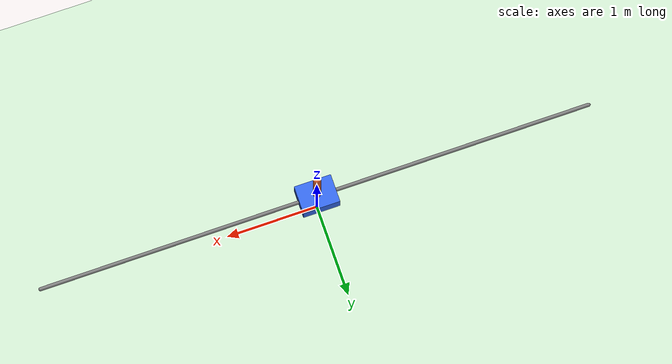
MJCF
<mujoco model="cartpole">
  <option gravity="0 0 -9.81" timestep="0.01"/>

  <worldbody>
    <light pos="0 0 3"/>
    <geom name="floor" type="plane" size="5 5 0.1" rgba="0.8 0.9 0.8 1"/>
    <geom name="rail" type="capsule" fromto="-3 0 0.5  3 0 0.5" size="0.02" rgba="0.5 0.5 0.5 1"/>

    <body name="cart" pos="0 0 0.5">
      <joint name="slider" type="slide" axis="1 0 0"/>
      <geom name="cart" type="box" size="0.2 0.15 0.1" rgba="0.2 0.4 0.9 1"/>

      <body name="pole" pos="0 0 0.1">
        <joint name="hinge" type="hinge" axis="0 1 0"/>
        <geom name="pole" type="capsule" fromto="0 0 0  0 0 0.6" size="0.04" rgba="0.9 0.4 0.2 1"/>
      </body>
    </body>
  </worldbody>

  <actuator>
    <motor name="cart_motor" joint="slider" gear="50" ctrlrange="-1 1"/>
  </actuator>

  <sensor>
    <jointpos name="cart_pos"   joint="slider"/>
    <jointpos name="pole_angle" joint="hinge"/>
    <jointvel name="pole_vel"   joint="hinge"/>
  </sensor>
</mujoco>
